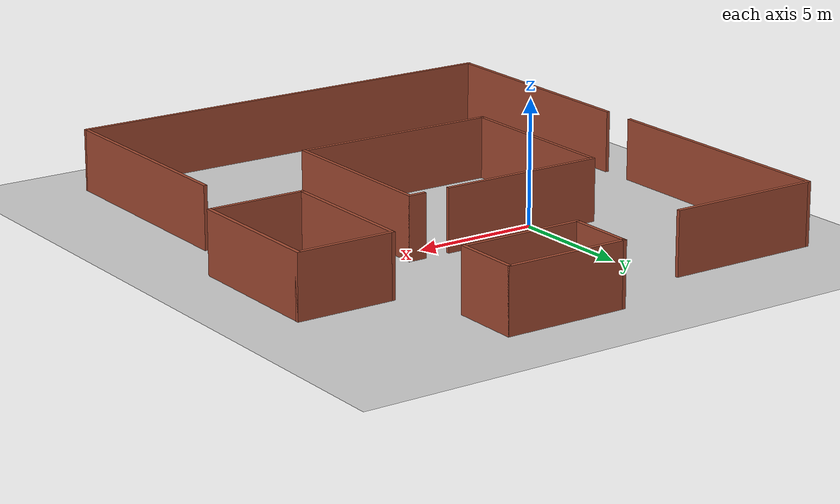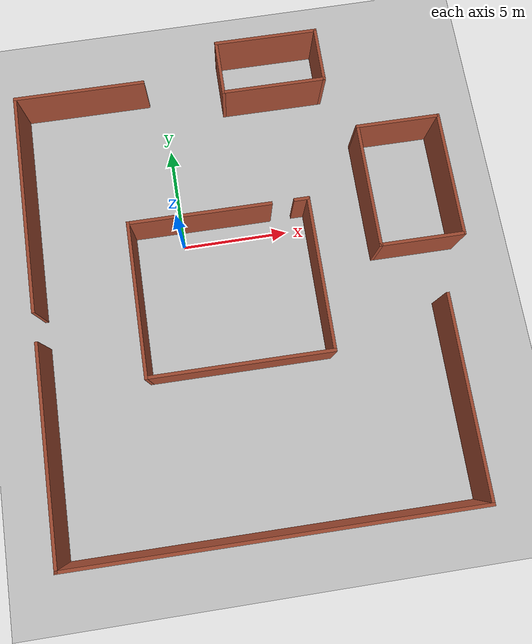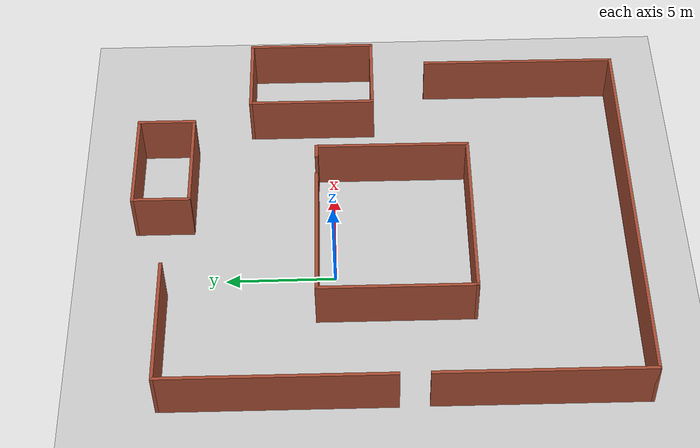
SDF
<sdf version="1.6">
 <world name="default">
  <light name="sun" type="directional">
   <pose>0 0 10 0 -0 0</pose>
   <diffuse>0.8 0.8 0.8 1</diffuse>
   <specular>0.2 0.2 0.2 1</specular>
   <attenuation>
    <range>1000</range>
    <constant>0.9</constant>
    <linear>0.01</linear>
    <quadratic>0.001</quadratic>
   </attenuation>
   <direction>-0.5 0.1 -0.9</direction>
  </light>
  <model name="ground_plane">
   <static>1</static>
   <link name="link">
    <collision name="collision">
     <geometry><plane><normal>0 0 1</normal><size>100 100</size></plane></geometry>
     <surface><friction><ode><mu>100</mu><mu2>50</mu2></ode></friction></surface>
    </collision>
    <visual name="visual">
     <cast_shadows>0</cast_shadows>
     <geometry><plane><normal>0 0 1</normal><size>100 100</size></plane></geometry>
     <material>
      <script><uri>file://media/materials/scripts/gazebo.material</uri><name>Gazebo/Grey</name></script>
     </material>
    </visual>
   </link>
  </model>
  <gravity>0 0 -9.8</gravity>
  <magnetic_field>6e-06 2.3e-05 -4.2e-05</magnetic_field>
  <atmosphere type="adiabatic"/>
  <physics name="default_physics" default="0" type="ode">
   <max_step_size>0.001</max_step_size>
   <real_time_factor>1</real_time_factor>
   <real_time_update_rate>1000</real_time_update_rate>
  </physics>
  <scene><ambient>0.4 0.4 0.4 1</ambient><background>0.7 0.7 0.7 1</background><shadows>1</shadows></scene>
  <audio><device>default</device></audio>
  <spherical_coordinates>
   <surface_model>EARTH_WGS84</surface_model>
   <latitude_deg>0</latitude_deg>
   <longitude_deg>0</longitude_deg>
   <elevation>0</elevation>
   <heading_deg>0</heading_deg>
  </spherical_coordinates>
  <model name="test_world_two">
   <pose>2.89284 -2.2206 0 0 -0 1.5653</pose>
   <link name="Wall_29">
    <collision name="Wall_29_Collision">
     <geometry><box><size>7.25 0.15 2.5</size></box></geometry>
     <pose>0 0 1.25 0 -0 0</pose>
    </collision>
    <visual name="Wall_29_Visual">
     <pose>0 0 1.25 0 -0 0</pose>
     <geometry><box><size>7.25 0.15 2.5</size></box></geometry>
     <material>
      <script><uri>file://media/materials/scripts/gazebo.material</uri><name>Gazebo/Bricks</name></script>
      <ambient>1 1 1 1</ambient>
     </material>
     <meta><layer>0</layer></meta>
    </visual>
    <pose>-0.538258 5.23873 0 0 -0 0</pose>
   </link>
   <link name="Wall_30">
    <collision name="Wall_30_Collision">
     <geometry><box><size>6.75 0.15 2.5</size></box></geometry>
     <pose>0 0 1.25 0 -0 0</pose>
    </collision>
    <visual name="Wall_30_Visual">
     <pose>0 0 1.25 0 -0 0</pose>
     <geometry><box><size>6.75 0.15 2.5</size></box></geometry>
     <material>
      <script><uri>file://media/materials/scripts/gazebo.material</uri><name>Gazebo/Bricks</name></script>
      <ambient>1 1 1 1</ambient>
     </material>
     <meta><layer>0</layer></meta>
    </visual>
    <pose>3.01174 1.93873 0 0 -0 -1.5708</pose>
   </link>
   <link name="Wall_32">
    <collision name="Wall_32_Collision">
     <geometry><box><size>8.5 0.15 2.5</size></box></geometry>
     <pose>0 0 1.25 0 -0 0</pose>
    </collision>
    <visual name="Wall_32_Visual">
     <pose>0 0 1.25 0 -0 0</pose>
     <geometry><box><size>8.5 0.15 2.5</size></box></geometry>
     <material>
      <script><uri>file://media/materials/scripts/gazebo.material</uri><name>Gazebo/Bricks</name></script>
      <ambient>1 1 1 1</ambient>
     </material>
     <meta><layer>0</layer></meta>
    </visual>
    <pose>-4.08826 1.06373 0 0 -0 -1.5708</pose>
   </link>
   <link name="Wall_33">
    <collision name="Wall_33_Collision">
     <geometry><box><size>7.25 0.15 2.5</size></box></geometry>
     <pose>0 0 1.25 0 -0 0</pose>
    </collision>
    <visual name="Wall_33_Visual">
     <pose>0 0 1.25 0 -0 0</pose>
     <geometry><box><size>7.25 0.15 2.5</size></box></geometry>
     <material>
      <script><uri>file://media/materials/scripts/gazebo.material</uri><name>Gazebo/Bricks</name></script>
      <ambient>1 1 1 1</ambient>
     </material>
     <meta><layer>0</layer></meta>
    </visual>
    <pose>-0.538258 -3.11127 0 0 -0 0</pose>
   </link>
   <link name="Wall_34">
    <collision name="Wall_34_Collision">
     <geometry><box><size>0.75 0.15 2.5</size></box></geometry>
     <pose>0 0 1.25 0 -0 0</pose>
    </collision>
    <visual name="Wall_34_Visual">
     <pose>0 0 1.25 0 -0 0</pose>
     <geometry><box><size>0.75 0.15 2.5</size></box></geometry>
     <material>
      <script><uri>file://media/materials/scripts/gazebo.material</uri><name>Gazebo/Bricks</name></script>
      <ambient>1 1 1 1</ambient>
     </material>
     <meta><layer>0</layer></meta>
    </visual>
    <pose>3.01174 -2.81127 0 0 -0 1.5708</pose>
   </link>
   <link name="Wall_36">
    <collision name="Wall_36_Collision">
     <geometry><box><size>5 0.15 2.5</size></box></geometry>
     <pose>0 0 1.25 0 -0 0</pose>
    </collision>
    <visual name="Wall_36_Visual">
     <pose>0 0 1.25 0 -0 0</pose>
     <geometry><box><size>5 0.15 2.5</size></box></geometry>
     <material>
      <script><uri>file://media/materials/scripts/gazebo.material</uri><name>Gazebo/Bricks</name></script>
      <ambient>1 1 1 1</ambient>
     </material>
     <meta><layer>0</layer></meta>
    </visual>
    <pose>8.84624 -2.43687 0 0 -0 -1.5708</pose>
   </link>
   <link name="Wall_37">
    <collision name="Wall_37_Collision">
     <geometry><box><size>2.75 0.15 2.5</size></box></geometry>
     <pose>0 0 1.25 0 -0 0</pose>
    </collision>
    <visual name="Wall_37_Visual">
     <pose>0 0 1.25 0 -0 0</pose>
     <geometry><box><size>2.75 0.15 2.5</size></box></geometry>
     <material>
      <script><uri>file://media/materials/scripts/gazebo.material</uri><name>Gazebo/Bricks</name></script>
      <ambient>1 1 1 1</ambient>
     </material>
     <meta><layer>0</layer></meta>
    </visual>
    <pose>10.1462 -4.86187 0 0 -0 0</pose>
   </link>
   <link name="Wall_38">
    <collision name="Wall_38_Collision">
     <geometry><box><size>5 0.15 2.5</size></box></geometry>
     <pose>0 0 1.25 0 -0 0</pose>
    </collision>
    <visual name="Wall_38_Visual">
     <pose>0 0 1.25 0 -0 0</pose>
     <geometry><box><size>5 0.15 2.5</size></box></geometry>
     <material>
      <script><uri>file://media/materials/scripts/gazebo.material</uri><name>Gazebo/Bricks</name></script>
      <ambient>1 1 1 1</ambient>
     </material>
     <meta><layer>0</layer></meta>
    </visual>
    <pose>11.4462 -2.43687 0 0 -0 1.5708</pose>
   </link>
   <link name="Wall_39">
    <collision name="Wall_39_Collision">
     <geometry><box><size>2.75 0.15 2.5</size></box></geometry>
     <pose>0 0 1.25 0 -0 0</pose>
    </collision>
    <visual name="Wall_39_Visual">
     <pose>0 0 1.25 0 -0 0</pose>
     <geometry><box><size>2.75 0.15 2.5</size></box></geometry>
     <material>
      <script><uri>file://media/materials/scripts/gazebo.material</uri><name>Gazebo/Bricks</name></script>
      <ambient>1 1 1 1</ambient>
     </material>
     <meta><layer>0</layer></meta>
    </visual>
    <pose>10.1462 -0.011871 0 0 -0 3.14159</pose>
   </link>
   <link name="Wall_41">
    <collision name="Wall_41_Collision">
     <geometry><box><size>6.25 0.15 2.5</size></box></geometry>
     <pose>0 0 1.25 0 -0 0</pose>
    </collision>
    <visual name="Wall_41_Visual">
     <pose>0 0 1.25 0 -0 0</pose>
     <geometry><box><size>6.25 0.15 2.5</size></box></geometry>
     <material>
      <script><uri>file://media/materials/scripts/gazebo.material</uri><name>Gazebo/Bricks</name></script>
      <ambient>1 1 1 1</ambient>
     </material>
     <meta><layer>0</layer></meta>
    </visual>
    <pose>9.91658 6.80063 0 0 -0 1.5708</pose>
   </link>
   <link name="Wall_42">
    <collision name="Wall_42_Collision">
     <geometry><box><size>10.5 0.15 2.5</size></box></geometry>
     <pose>0 0 1.25 0 -0 0</pose>
    </collision>
    <visual name="Wall_42_Visual">
     <pose>0 0 1.25 0 -0 0</pose>
     <geometry><box><size>10.5 0.15 2.5</size></box></geometry>
     <material>
      <script><uri>file://media/materials/scripts/gazebo.material</uri><name>Gazebo/Bricks</name></script>
      <ambient>1 1 1 1</ambient>
     </material>
     <meta><layer>0</layer></meta>
    </visual>
    <pose>4.74158 9.85063 0 0 -0 3.14159</pose>
   </link>
   <link name="Wall_45">
    <collision name="Wall_45_Collision">
     <geometry><box><size>18.5 0.15 2.5</size></box></geometry>
     <pose>0 0 1.25 0 -0 0</pose>
    </collision>
    <visual name="Wall_45_Visual">
     <pose>0 0 1.25 0 -0 0</pose>
     <geometry><box><size>18.5 0.15 2.5</size></box></geometry>
     <material>
      <script><uri>file://media/materials/scripts/gazebo.material</uri><name>Gazebo/Bricks</name></script>
      <ambient>1 1 1 1</ambient>
     </material>
     <meta><layer>0</layer></meta>
    </visual>
    <pose>-11.4462 0.655812 0 0 -0 1.5708</pose>
   </link>
   <link name="Wall_47">
    <collision name="Wall_47_Collision">
     <geometry><box><size>9.65512 0.15 2.5</size></box></geometry>
     <pose>0 0 1.25 0 -0 0</pose>
    </collision>
    <visual name="Wall_47_Visual">
     <pose>0 0 1.25 0 -0 0</pose>
     <geometry><box><size>9.65512 0.15 2.5</size></box></geometry>
     <material>
      <script><uri>file://media/materials/scripts/gazebo.material</uri><name>Gazebo/Bricks</name></script>
      <ambient>1 1 1 1</ambient>
     </material>
     <meta><layer>0</layer></meta>
    </visual>
    <pose>-6.64625 9.83081 0 0 -0 0</pose>
   </link>
   <link name="Wall_52">
    <collision name="Wall_52_Collision">
     <geometry><box><size>9.25 0.15 2.5</size></box></geometry>
     <pose>0 0 1.25 0 -0 0</pose>
    </collision>
    <visual name="Wall_52_Visual">
     <pose>0 0 1.25 0 -0 0</pose>
     <geometry><box><size>9.25 0.15 2.5</size></box></geometry>
     <material>
      <script><uri>file://media/materials/scripts/gazebo.material</uri><name>Gazebo/Bricks</name></script>
      <ambient>1 1 1 1</ambient>
     </material>
     <meta><layer>0</layer></meta>
    </visual>
    <pose>-6.89625 -8.51919 0 0 -0 0</pose>
   </link>
   <link name="Wall_54">
    <collision name="Wall_54_Collision">
     <geometry><box><size>4 0.15 2.5</size></box></geometry>
     <pose>0 0 1.25 0 -0 0</pose>
    </collision>
    <visual name="Wall_54_Visual">
     <pose>0 0 1.25 0 -0 0</pose>
     <geometry><box><size>4 0.15 2.5</size></box></geometry>
     <material>
      <script><uri>file://media/materials/scripts/gazebo.material</uri><name>Gazebo/Bricks</name></script>
      <ambient>1 1 1 1</ambient>
     </material>
     <meta><layer>0</layer></meta>
    </visual>
    <pose>0.327459 -7.92563 0 0 -0 -1.5708</pose>
   </link>
   <link name="Wall_55">
    <collision name="Wall_55_Collision">
     <geometry><box><size>6 0.15 2.5</size></box></geometry>
     <pose>0 0 1.25 0 -0 0</pose>
    </collision>
    <visual name="Wall_55_Visual">
     <pose>0 0 1.25 0 -0 0</pose>
     <geometry><box><size>6 0.15 2.5</size></box></geometry>
     <material>
      <script><uri>file://media/materials/scripts/gazebo.material</uri><name>Gazebo/Bricks</name></script>
      <ambient>1 1 1 1</ambient>
     </material>
     <meta><layer>0</layer></meta>
    </visual>
    <pose>3.25246 -9.85063 0 0 -0 0</pose>
   </link>
   <link name="Wall_56">
    <collision name="Wall_56_Collision">
     <geometry><box><size>4 0.15 2.5</size></box></geometry>
     <pose>0 0 1.25 0 -0 0</pose>
    </collision>
    <visual name="Wall_56_Visual">
     <pose>0 0 1.25 0 -0 0</pose>
     <geometry><box><size>4 0.15 2.5</size></box></geometry>
     <material>
      <script><uri>file://media/materials/scripts/gazebo.material</uri><name>Gazebo/Bricks</name></script>
      <ambient>1 1 1 1</ambient>
     </material>
     <meta><layer>0</layer></meta>
    </visual>
    <pose>6.17746 -7.92563 0 0 -0 1.5708</pose>
   </link>
   <link name="Wall_57">
    <collision name="Wall_57_Collision">
     <geometry><box><size>6 0.15 2.5</size></box></geometry>
     <pose>0 0 1.25 0 -0 0</pose>
    </collision>
    <visual name="Wall_57_Visual">
     <pose>0 0 1.25 0 -0 0</pose>
     <geometry><box><size>6 0.15 2.5</size></box></geometry>
     <material>
      <script><uri>file://media/materials/scripts/gazebo.material</uri><name>Gazebo/Bricks</name></script>
      <ambient>1 1 1 1</ambient>
     </material>
     <meta><layer>0</layer></meta>
    </visual>
    <pose>3.25246 -6.00063 0 0 -0 3.14159</pose>
   </link>
   <static>1</static>
  </model>
 </world>
</sdf>
